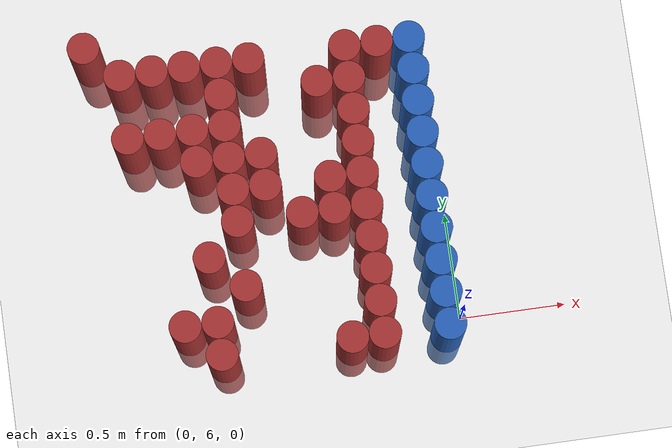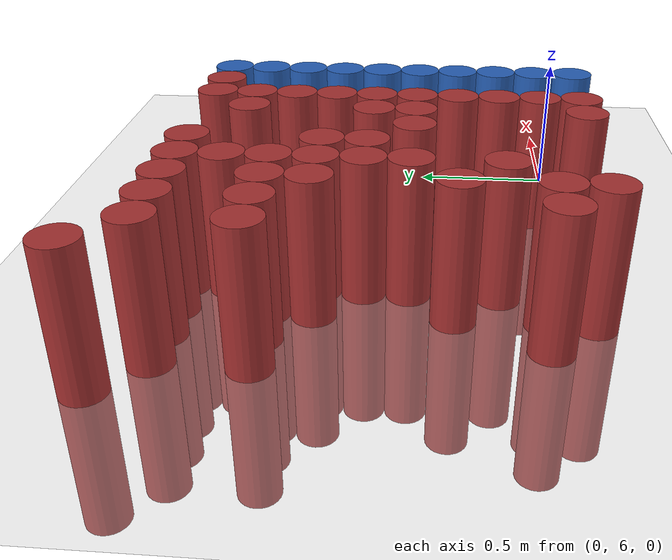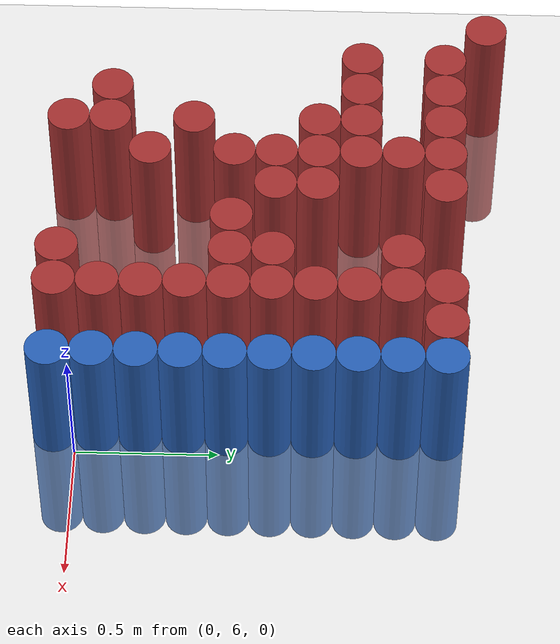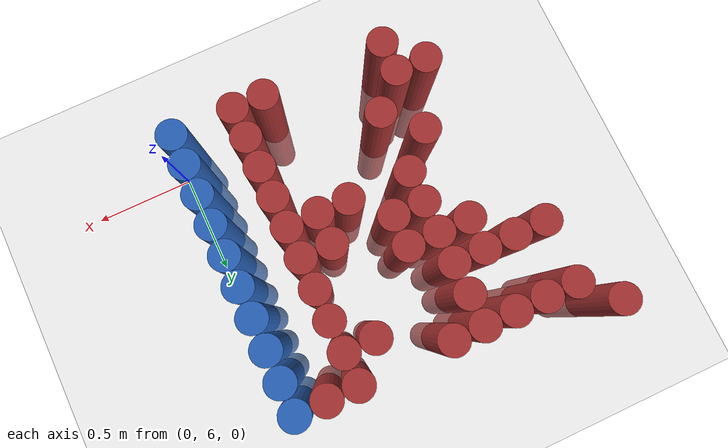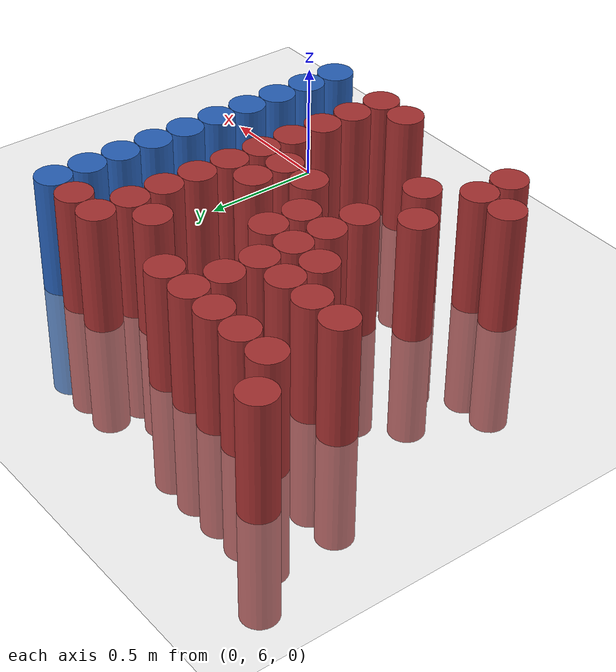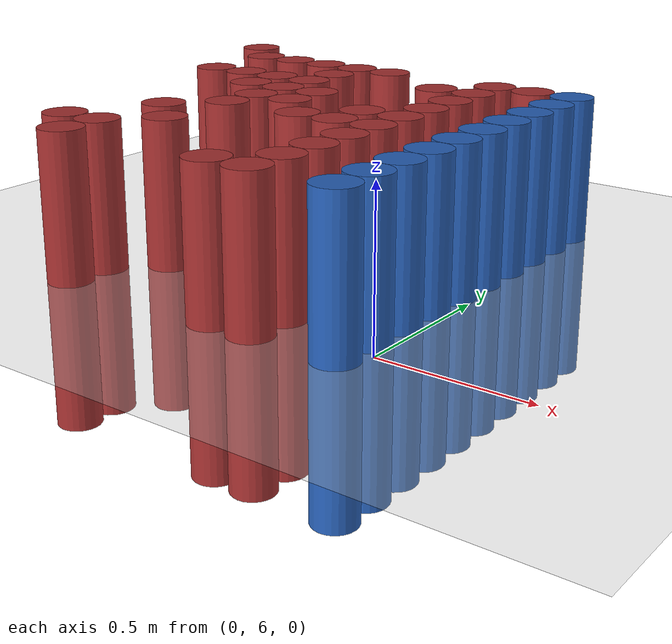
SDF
<sdf version="1.6">
 <world name="default">
  <model name="ground_plane">
   <static>1</static>
   <link name="link">
    <collision name="collision">
     <geometry><plane><normal>0 0 1</normal><size>100 100</size></plane></geometry>
     <surface><friction><ode><mu>100</mu><mu2>50</mu2></ode></friction></surface>
    </collision>
    <visual name="visual">
     <cast_shadows>0</cast_shadows>
     <geometry><plane><normal>0 0 1</normal><size>100 100</size></plane></geometry>
     <material>
      <script><uri>file://media/materials/scripts/gazebo.material</uri><name>Gazebo/Grey</name></script>
     </material>
    </visual>
   </link>
  </model>
  <model name="unit_cylinder_218">
   <static>1</static>
   <pose>-1.575000 7.425000 0.000000 0.000000 0.000000 0.000000</pose>
   <link name="link">
    <inertial>
     <mass>1</mass>
     <inertia><ixx>0.145833</ixx><ixy>0</ixy><ixz>0</ixz><iyy>0.145833</iyy><iyz>0</iyz><izz>0.125</izz></inertia>
    </inertial>
    <collision name="collision">
     <geometry><cylinder><radius>0.075000</radius><length>1</length></cylinder></geometry>
    </collision>
    <visual name="visual">
     <geometry><cylinder><radius>0.075000</radius><length>1</length></cylinder></geometry>
     <material>
      <ambient>0.648000 0.192000 0.192000 1</ambient>
      <diffuse>0.648000 0.192000 0.192000 1</diffuse>
     </material>
     <material>
      <script><name>Gazebo/Grey</name><uri>file://media/materials/scripts/gazebo.material</uri></script>
     </material>
    </visual>
   </link>
  </model>
  <model name="unit_cylinder_226">
   <static>1</static>
   <pose>-1.425000 6.975000 0.000000 0.000000 0.000000 0.000000</pose>
   <link name="link">
    <inertial>
     <mass>1</mass>
     <inertia><ixx>0.145833</ixx><ixy>0</ixy><ixz>0</ixz><iyy>0.145833</iyy><iyz>0</iyz><izz>0.125</izz></inertia>
    </inertial>
    <collision name="collision">
     <geometry><cylinder><radius>0.075000</radius><length>1</length></cylinder></geometry>
    </collision>
    <visual name="visual">
     <geometry><cylinder><radius>0.075000</radius><length>1</length></cylinder></geometry>
     <material>
      <ambient>0.648000 0.192000 0.192000 1</ambient>
      <diffuse>0.648000 0.192000 0.192000 1</diffuse>
     </material>
     <material>
      <script><name>Gazebo/Grey</name><uri>file://media/materials/scripts/gazebo.material</uri></script>
     </material>
    </visual>
   </link>
  </model>
  <model name="unit_cylinder_227">
   <static>1</static>
   <pose>-1.425000 7.275000 0.000000 0.000000 0.000000 0.000000</pose>
   <link name="link">
    <inertial>
     <mass>1</mass>
     <inertia><ixx>0.145833</ixx><ixy>0</ixy><ixz>0</ixz><iyy>0.145833</iyy><iyz>0</iyz><izz>0.125</izz></inertia>
    </inertial>
    <collision name="collision">
     <geometry><cylinder><radius>0.075000</radius><length>1</length></cylinder></geometry>
    </collision>
    <visual name="visual">
     <geometry><cylinder><radius>0.075000</radius><length>1</length></cylinder></geometry>
     <material>
      <ambient>0.648000 0.192000 0.192000 1</ambient>
      <diffuse>0.648000 0.192000 0.192000 1</diffuse>
     </material>
     <material>
      <script><name>Gazebo/Grey</name><uri>file://media/materials/scripts/gazebo.material</uri></script>
     </material>
    </visual>
   </link>
  </model>
  <model name="unit_cylinder_231">
   <static>1</static>
   <pose>-1.275000 6.075000 0.000000 0.000000 0.000000 0.000000</pose>
   <link name="link">
    <inertial>
     <mass>1</mass>
     <inertia><ixx>0.145833</ixx><ixy>0</ixy><ixz>0</ixz><iyy>0.145833</iyy><iyz>0</iyz><izz>0.125</izz></inertia>
    </inertial>
    <collision name="collision">
     <geometry><cylinder><radius>0.075000</radius><length>1</length></cylinder></geometry>
    </collision>
    <visual name="visual">
     <geometry><cylinder><radius>0.075000</radius><length>1</length></cylinder></geometry>
     <material>
      <ambient>0.648000 0.192000 0.192000 1</ambient>
      <diffuse>0.648000 0.192000 0.192000 1</diffuse>
     </material>
     <material>
      <script><name>Gazebo/Grey</name><uri>file://media/materials/scripts/gazebo.material</uri></script>
     </material>
    </visual>
   </link>
  </model>
  <model name="unit_cylinder_232">
   <static>1</static>
   <pose>-1.275000 6.975000 0.000000 0.000000 0.000000 0.000000</pose>
   <link name="link">
    <inertial>
     <mass>1</mass>
     <inertia><ixx>0.145833</ixx><ixy>0</ixy><ixz>0</ixz><iyy>0.145833</iyy><iyz>0</iyz><izz>0.125</izz></inertia>
    </inertial>
    <collision name="collision">
     <geometry><cylinder><radius>0.075000</radius><length>1</length></cylinder></geometry>
    </collision>
    <visual name="visual">
     <geometry><cylinder><radius>0.075000</radius><length>1</length></cylinder></geometry>
     <material>
      <ambient>0.648000 0.192000 0.192000 1</ambient>
      <diffuse>0.648000 0.192000 0.192000 1</diffuse>
     </material>
     <material>
      <script><name>Gazebo/Grey</name><uri>file://media/materials/scripts/gazebo.material</uri></script>
     </material>
    </visual>
   </link>
  </model>
  <model name="unit_cylinder_233">
   <static>1</static>
   <pose>-1.275000 7.275000 0.000000 0.000000 0.000000 0.000000</pose>
   <link name="link">
    <inertial>
     <mass>1</mass>
     <inertia><ixx>0.145833</ixx><ixy>0</ixy><ixz>0</ixz><iyy>0.145833</iyy><iyz>0</iyz><izz>0.125</izz></inertia>
    </inertial>
    <collision name="collision">
     <geometry><cylinder><radius>0.075000</radius><length>1</length></cylinder></geometry>
    </collision>
    <visual name="visual">
     <geometry><cylinder><radius>0.075000</radius><length>1</length></cylinder></geometry>
     <material>
      <ambient>0.648000 0.192000 0.192000 1</ambient>
      <diffuse>0.648000 0.192000 0.192000 1</diffuse>
     </material>
     <material>
      <script><name>Gazebo/Grey</name><uri>file://media/materials/scripts/gazebo.material</uri></script>
     </material>
    </visual>
   </link>
  </model>
  <model name="unit_cylinder_235">
   <static>1</static>
   <pose>-1.125000 5.925000 0.000000 0.000000 0.000000 0.000000</pose>
   <link name="link">
    <inertial>
     <mass>1</mass>
     <inertia><ixx>0.145833</ixx><ixy>0</ixy><ixz>0</ixz><iyy>0.145833</iyy><iyz>0</iyz><izz>0.125</izz></inertia>
    </inertial>
    <collision name="collision">
     <geometry><cylinder><radius>0.075000</radius><length>1</length></cylinder></geometry>
    </collision>
    <visual name="visual">
     <geometry><cylinder><radius>0.075000</radius><length>1</length></cylinder></geometry>
     <material>
      <ambient>0.648000 0.192000 0.192000 1</ambient>
      <diffuse>0.648000 0.192000 0.192000 1</diffuse>
     </material>
     <material>
      <script><name>Gazebo/Grey</name><uri>file://media/materials/scripts/gazebo.material</uri></script>
     </material>
    </visual>
   </link>
  </model>
  <model name="unit_cylinder_236">
   <static>1</static>
   <pose>-1.125000 6.075000 0.000000 0.000000 0.000000 0.000000</pose>
   <link name="link">
    <inertial>
     <mass>1</mass>
     <inertia><ixx>0.145833</ixx><ixy>0</ixy><ixz>0</ixz><iyy>0.145833</iyy><iyz>0</iyz><izz>0.125</izz></inertia>
    </inertial>
    <collision name="collision">
     <geometry><cylinder><radius>0.075000</radius><length>1</length></cylinder></geometry>
    </collision>
    <visual name="visual">
     <geometry><cylinder><radius>0.075000</radius><length>1</length></cylinder></geometry>
     <material>
      <ambient>0.648000 0.192000 0.192000 1</ambient>
      <diffuse>0.648000 0.192000 0.192000 1</diffuse>
     </material>
     <material>
      <script><name>Gazebo/Grey</name><uri>file://media/materials/scripts/gazebo.material</uri></script>
     </material>
    </visual>
   </link>
  </model>
  <model name="unit_cylinder_237">
   <static>1</static>
   <pose>-1.125000 6.375000 0.000000 0.000000 0.000000 0.000000</pose>
   <link name="link">
    <inertial>
     <mass>1</mass>
     <inertia><ixx>0.145833</ixx><ixy>0</ixy><ixz>0</ixz><iyy>0.145833</iyy><iyz>0</iyz><izz>0.125</izz></inertia>
    </inertial>
    <collision name="collision">
     <geometry><cylinder><radius>0.075000</radius><length>1</length></cylinder></geometry>
    </collision>
    <visual name="visual">
     <geometry><cylinder><radius>0.075000</radius><length>1</length></cylinder></geometry>
     <material>
      <ambient>0.648000 0.192000 0.192000 1</ambient>
      <diffuse>0.648000 0.192000 0.192000 1</diffuse>
     </material>
     <material>
      <script><name>Gazebo/Grey</name><uri>file://media/materials/scripts/gazebo.material</uri></script>
     </material>
    </visual>
   </link>
  </model>
  <model name="unit_cylinder_238">
   <static>1</static>
   <pose>-1.125000 6.825000 0.000000 0.000000 0.000000 0.000000</pose>
   <link name="link">
    <inertial>
     <mass>1</mass>
     <inertia><ixx>0.145833</ixx><ixy>0</ixy><ixz>0</ixz><iyy>0.145833</iyy><iyz>0</iyz><izz>0.125</izz></inertia>
    </inertial>
    <collision name="collision">
     <geometry><cylinder><radius>0.075000</radius><length>1</length></cylinder></geometry>
    </collision>
    <visual name="visual">
     <geometry><cylinder><radius>0.075000</radius><length>1</length></cylinder></geometry>
     <material>
      <ambient>0.648000 0.192000 0.192000 1</ambient>
      <diffuse>0.648000 0.192000 0.192000 1</diffuse>
     </material>
     <material>
      <script><name>Gazebo/Grey</name><uri>file://media/materials/scripts/gazebo.material</uri></script>
     </material>
    </visual>
   </link>
  </model>
  <model name="unit_cylinder_239">
   <static>1</static>
   <pose>-1.125000 6.975000 0.000000 0.000000 0.000000 0.000000</pose>
   <link name="link">
    <inertial>
     <mass>1</mass>
     <inertia><ixx>0.145833</ixx><ixy>0</ixy><ixz>0</ixz><iyy>0.145833</iyy><iyz>0</iyz><izz>0.125</izz></inertia>
    </inertial>
    <collision name="collision">
     <geometry><cylinder><radius>0.075000</radius><length>1</length></cylinder></geometry>
    </collision>
    <visual name="visual">
     <geometry><cylinder><radius>0.075000</radius><length>1</length></cylinder></geometry>
     <material>
      <ambient>0.648000 0.192000 0.192000 1</ambient>
      <diffuse>0.648000 0.192000 0.192000 1</diffuse>
     </material>
     <material>
      <script><name>Gazebo/Grey</name><uri>file://media/materials/scripts/gazebo.material</uri></script>
     </material>
    </visual>
   </link>
  </model>
  <model name="unit_cylinder_240">
   <static>1</static>
   <pose>-1.125000 7.275000 0.000000 0.000000 0.000000 0.000000</pose>
   <link name="link">
    <inertial>
     <mass>1</mass>
     <inertia><ixx>0.145833</ixx><ixy>0</ixy><ixz>0</ixz><iyy>0.145833</iyy><iyz>0</iyz><izz>0.125</izz></inertia>
    </inertial>
    <collision name="collision">
     <geometry><cylinder><radius>0.075000</radius><length>1</length></cylinder></geometry>
    </collision>
    <visual name="visual">
     <geometry><cylinder><radius>0.075000</radius><length>1</length></cylinder></geometry>
     <material>
      <ambient>0.648000 0.192000 0.192000 1</ambient>
      <diffuse>0.648000 0.192000 0.192000 1</diffuse>
     </material>
     <material>
      <script><name>Gazebo/Grey</name><uri>file://media/materials/scripts/gazebo.material</uri></script>
     </material>
    </visual>
   </link>
  </model>
  <model name="unit_cylinder_245">
   <static>1</static>
   <pose>-0.975000 6.225000 0.000000 0.000000 0.000000 0.000000</pose>
   <link name="link">
    <inertial>
     <mass>1</mass>
     <inertia><ixx>0.145833</ixx><ixy>0</ixy><ixz>0</ixz><iyy>0.145833</iyy><iyz>0</iyz><izz>0.125</izz></inertia>
    </inertial>
    <collision name="collision">
     <geometry><cylinder><radius>0.075000</radius><length>1</length></cylinder></geometry>
    </collision>
    <visual name="visual">
     <geometry><cylinder><radius>0.075000</radius><length>1</length></cylinder></geometry>
     <material>
      <ambient>0.648000 0.192000 0.192000 1</ambient>
      <diffuse>0.648000 0.192000 0.192000 1</diffuse>
     </material>
     <material>
      <script><name>Gazebo/Grey</name><uri>file://media/materials/scripts/gazebo.material</uri></script>
     </material>
    </visual>
   </link>
  </model>
  <model name="unit_cylinder_246">
   <static>1</static>
   <pose>-0.975000 6.525000 0.000000 0.000000 0.000000 0.000000</pose>
   <link name="link">
    <inertial>
     <mass>1</mass>
     <inertia><ixx>0.145833</ixx><ixy>0</ixy><ixz>0</ixz><iyy>0.145833</iyy><iyz>0</iyz><izz>0.125</izz></inertia>
    </inertial>
    <collision name="collision">
     <geometry><cylinder><radius>0.075000</radius><length>1</length></cylinder></geometry>
    </collision>
    <visual name="visual">
     <geometry><cylinder><radius>0.075000</radius><length>1</length></cylinder></geometry>
     <material>
      <ambient>0.648000 0.192000 0.192000 1</ambient>
      <diffuse>0.648000 0.192000 0.192000 1</diffuse>
     </material>
     <material>
      <script><name>Gazebo/Grey</name><uri>file://media/materials/scripts/gazebo.material</uri></script>
     </material>
    </visual>
   </link>
  </model>
  <model name="unit_cylinder_247">
   <static>1</static>
   <pose>-0.975000 6.675000 0.000000 0.000000 0.000000 0.000000</pose>
   <link name="link">
    <inertial>
     <mass>1</mass>
     <inertia><ixx>0.145833</ixx><ixy>0</ixy><ixz>0</ixz><iyy>0.145833</iyy><iyz>0</iyz><izz>0.125</izz></inertia>
    </inertial>
    <collision name="collision">
     <geometry><cylinder><radius>0.075000</radius><length>1</length></cylinder></geometry>
    </collision>
    <visual name="visual">
     <geometry><cylinder><radius>0.075000</radius><length>1</length></cylinder></geometry>
     <material>
      <ambient>0.648000 0.192000 0.192000 1</ambient>
      <diffuse>0.648000 0.192000 0.192000 1</diffuse>
     </material>
     <material>
      <script><name>Gazebo/Grey</name><uri>file://media/materials/scripts/gazebo.material</uri></script>
     </material>
    </visual>
   </link>
  </model>
  <model name="unit_cylinder_248">
   <static>1</static>
   <pose>-0.975000 6.825000 0.000000 0.000000 0.000000 0.000000</pose>
   <link name="link">
    <inertial>
     <mass>1</mass>
     <inertia><ixx>0.145833</ixx><ixy>0</ixy><ixz>0</ixz><iyy>0.145833</iyy><iyz>0</iyz><izz>0.125</izz></inertia>
    </inertial>
    <collision name="collision">
     <geometry><cylinder><radius>0.075000</radius><length>1</length></cylinder></geometry>
    </collision>
    <visual name="visual">
     <geometry><cylinder><radius>0.075000</radius><length>1</length></cylinder></geometry>
     <material>
      <ambient>0.648000 0.192000 0.192000 1</ambient>
      <diffuse>0.648000 0.192000 0.192000 1</diffuse>
     </material>
     <material>
      <script><name>Gazebo/Grey</name><uri>file://media/materials/scripts/gazebo.material</uri></script>
     </material>
    </visual>
   </link>
  </model>
  <model name="unit_cylinder_249">
   <static>1</static>
   <pose>-0.975000 6.975000 0.000000 0.000000 0.000000 0.000000</pose>
   <link name="link">
    <inertial>
     <mass>1</mass>
     <inertia><ixx>0.145833</ixx><ixy>0</ixy><ixz>0</ixz><iyy>0.145833</iyy><iyz>0</iyz><izz>0.125</izz></inertia>
    </inertial>
    <collision name="collision">
     <geometry><cylinder><radius>0.075000</radius><length>1</length></cylinder></geometry>
    </collision>
    <visual name="visual">
     <geometry><cylinder><radius>0.075000</radius><length>1</length></cylinder></geometry>
     <material>
      <ambient>0.648000 0.192000 0.192000 1</ambient>
      <diffuse>0.648000 0.192000 0.192000 1</diffuse>
     </material>
     <material>
      <script><name>Gazebo/Grey</name><uri>file://media/materials/scripts/gazebo.material</uri></script>
     </material>
    </visual>
   </link>
  </model>
  <model name="unit_cylinder_250">
   <static>1</static>
   <pose>-0.975000 7.125000 0.000000 0.000000 0.000000 0.000000</pose>
   <link name="link">
    <inertial>
     <mass>1</mass>
     <inertia><ixx>0.145833</ixx><ixy>0</ixy><ixz>0</ixz><iyy>0.145833</iyy><iyz>0</iyz><izz>0.125</izz></inertia>
    </inertial>
    <collision name="collision">
     <geometry><cylinder><radius>0.075000</radius><length>1</length></cylinder></geometry>
    </collision>
    <visual name="visual">
     <geometry><cylinder><radius>0.075000</radius><length>1</length></cylinder></geometry>
     <material>
      <ambient>0.648000 0.192000 0.192000 1</ambient>
      <diffuse>0.648000 0.192000 0.192000 1</diffuse>
     </material>
     <material>
      <script><name>Gazebo/Grey</name><uri>file://media/materials/scripts/gazebo.material</uri></script>
     </material>
    </visual>
   </link>
  </model>
  <model name="unit_cylinder_251">
   <static>1</static>
   <pose>-0.975000 7.275000 0.000000 0.000000 0.000000 0.000000</pose>
   <link name="link">
    <inertial>
     <mass>1</mass>
     <inertia><ixx>0.145833</ixx><ixy>0</ixy><ixz>0</ixz><iyy>0.145833</iyy><iyz>0</iyz><izz>0.125</izz></inertia>
    </inertial>
    <collision name="collision">
     <geometry><cylinder><radius>0.075000</radius><length>1</length></cylinder></geometry>
    </collision>
    <visual name="visual">
     <geometry><cylinder><radius>0.075000</radius><length>1</length></cylinder></geometry>
     <material>
      <ambient>0.648000 0.192000 0.192000 1</ambient>
      <diffuse>0.648000 0.192000 0.192000 1</diffuse>
     </material>
     <material>
      <script><name>Gazebo/Grey</name><uri>file://media/materials/scripts/gazebo.material</uri></script>
     </material>
    </visual>
   </link>
  </model>
  <model name="unit_cylinder_255">
   <static>1</static>
   <pose>-0.825000 6.675000 0.000000 0.000000 0.000000 0.000000</pose>
   <link name="link">
    <inertial>
     <mass>1</mass>
     <inertia><ixx>0.145833</ixx><ixy>0</ixy><ixz>0</ixz><iyy>0.145833</iyy><iyz>0</iyz><izz>0.125</izz></inertia>
    </inertial>
    <collision name="collision">
     <geometry><cylinder><radius>0.075000</radius><length>1</length></cylinder></geometry>
    </collision>
    <visual name="visual">
     <geometry><cylinder><radius>0.075000</radius><length>1</length></cylinder></geometry>
     <material>
      <ambient>0.648000 0.192000 0.192000 1</ambient>
      <diffuse>0.648000 0.192000 0.192000 1</diffuse>
     </material>
     <material>
      <script><name>Gazebo/Grey</name><uri>file://media/materials/scripts/gazebo.material</uri></script>
     </material>
    </visual>
   </link>
  </model>
  <model name="unit_cylinder_256">
   <static>1</static>
   <pose>-0.825000 6.825000 0.000000 0.000000 0.000000 0.000000</pose>
   <link name="link">
    <inertial>
     <mass>1</mass>
     <inertia><ixx>0.145833</ixx><ixy>0</ixy><ixz>0</ixz><iyy>0.145833</iyy><iyz>0</iyz><izz>0.125</izz></inertia>
    </inertial>
    <collision name="collision">
     <geometry><cylinder><radius>0.075000</radius><length>1</length></cylinder></geometry>
    </collision>
    <visual name="visual">
     <geometry><cylinder><radius>0.075000</radius><length>1</length></cylinder></geometry>
     <material>
      <ambient>0.648000 0.192000 0.192000 1</ambient>
      <diffuse>0.648000 0.192000 0.192000 1</diffuse>
     </material>
     <material>
      <script><name>Gazebo/Grey</name><uri>file://media/materials/scripts/gazebo.material</uri></script>
     </material>
    </visual>
   </link>
  </model>
  <model name="unit_cylinder_257">
   <static>1</static>
   <pose>-0.825000 7.275000 0.000000 0.000000 0.000000 0.000000</pose>
   <link name="link">
    <inertial>
     <mass>1</mass>
     <inertia><ixx>0.145833</ixx><ixy>0</ixy><ixz>0</ixz><iyy>0.145833</iyy><iyz>0</iyz><izz>0.125</izz></inertia>
    </inertial>
    <collision name="collision">
     <geometry><cylinder><radius>0.075000</radius><length>1</length></cylinder></geometry>
    </collision>
    <visual name="visual">
     <geometry><cylinder><radius>0.075000</radius><length>1</length></cylinder></geometry>
     <material>
      <ambient>0.648000 0.192000 0.192000 1</ambient>
      <diffuse>0.648000 0.192000 0.192000 1</diffuse>
     </material>
     <material>
      <script><name>Gazebo/Grey</name><uri>file://media/materials/scripts/gazebo.material</uri></script>
     </material>
    </visual>
   </link>
  </model>
  <model name="unit_cylinder_264">
   <static>1</static>
   <pose>-0.675000 6.525000 0.000000 0.000000 0.000000 0.000000</pose>
   <link name="link">
    <inertial>
     <mass>1</mass>
     <inertia><ixx>0.145833</ixx><ixy>0</ixy><ixz>0</ixz><iyy>0.145833</iyy><iyz>0</iyz><izz>0.125</izz></inertia>
    </inertial>
    <collision name="collision">
     <geometry><cylinder><radius>0.075000</radius><length>1</length></cylinder></geometry>
    </collision>
    <visual name="visual">
     <geometry><cylinder><radius>0.075000</radius><length>1</length></cylinder></geometry>
     <material>
      <ambient>0.648000 0.192000 0.192000 1</ambient>
      <diffuse>0.648000 0.192000 0.192000 1</diffuse>
     </material>
     <material>
      <script><name>Gazebo/Grey</name><uri>file://media/materials/scripts/gazebo.material</uri></script>
     </material>
    </visual>
   </link>
  </model>
  <model name="unit_cylinder_274">
   <static>1</static>
   <pose>-0.525000 5.925000 0.000000 0.000000 0.000000 0.000000</pose>
   <link name="link">
    <inertial>
     <mass>1</mass>
     <inertia><ixx>0.145833</ixx><ixy>0</ixy><ixz>0</ixz><iyy>0.145833</iyy><iyz>0</iyz><izz>0.125</izz></inertia>
    </inertial>
    <collision name="collision">
     <geometry><cylinder><radius>0.075000</radius><length>1</length></cylinder></geometry>
    </collision>
    <visual name="visual">
     <geometry><cylinder><radius>0.075000</radius><length>1</length></cylinder></geometry>
     <material>
      <ambient>0.648000 0.192000 0.192000 1</ambient>
      <diffuse>0.648000 0.192000 0.192000 1</diffuse>
     </material>
     <material>
      <script><name>Gazebo/Grey</name><uri>file://media/materials/scripts/gazebo.material</uri></script>
     </material>
    </visual>
   </link>
  </model>
  <model name="unit_cylinder_275">
   <static>1</static>
   <pose>-0.525000 6.525000 0.000000 0.000000 0.000000 0.000000</pose>
   <link name="link">
    <inertial>
     <mass>1</mass>
     <inertia><ixx>0.145833</ixx><ixy>0</ixy><ixz>0</ixz><iyy>0.145833</iyy><iyz>0</iyz><izz>0.125</izz></inertia>
    </inertial>
    <collision name="collision">
     <geometry><cylinder><radius>0.075000</radius><length>1</length></cylinder></geometry>
    </collision>
    <visual name="visual">
     <geometry><cylinder><radius>0.075000</radius><length>1</length></cylinder></geometry>
     <material>
      <ambient>0.648000 0.192000 0.192000 1</ambient>
      <diffuse>0.648000 0.192000 0.192000 1</diffuse>
     </material>
     <material>
      <script><name>Gazebo/Grey</name><uri>file://media/materials/scripts/gazebo.material</uri></script>
     </material>
    </visual>
   </link>
  </model>
  <model name="unit_cylinder_276">
   <static>1</static>
   <pose>-0.525000 6.675000 0.000000 0.000000 0.000000 0.000000</pose>
   <link name="link">
    <inertial>
     <mass>1</mass>
     <inertia><ixx>0.145833</ixx><ixy>0</ixy><ixz>0</ixz><iyy>0.145833</iyy><iyz>0</iyz><izz>0.125</izz></inertia>
    </inertial>
    <collision name="collision">
     <geometry><cylinder><radius>0.075000</radius><length>1</length></cylinder></geometry>
    </collision>
    <visual name="visual">
     <geometry><cylinder><radius>0.075000</radius><length>1</length></cylinder></geometry>
     <material>
      <ambient>0.648000 0.192000 0.192000 1</ambient>
      <diffuse>0.648000 0.192000 0.192000 1</diffuse>
     </material>
     <material>
      <script><name>Gazebo/Grey</name><uri>file://media/materials/scripts/gazebo.material</uri></script>
     </material>
    </visual>
   </link>
  </model>
  <model name="unit_cylinder_277">
   <static>1</static>
   <pose>-0.525000 7.125000 0.000000 0.000000 0.000000 0.000000</pose>
   <link name="link">
    <inertial>
     <mass>1</mass>
     <inertia><ixx>0.145833</ixx><ixy>0</ixy><ixz>0</ixz><iyy>0.145833</iyy><iyz>0</iyz><izz>0.125</izz></inertia>
    </inertial>
    <collision name="collision">
     <geometry><cylinder><radius>0.075000</radius><length>1</length></cylinder></geometry>
    </collision>
    <visual name="visual">
     <geometry><cylinder><radius>0.075000</radius><length>1</length></cylinder></geometry>
     <material>
      <ambient>0.648000 0.192000 0.192000 1</ambient>
      <diffuse>0.648000 0.192000 0.192000 1</diffuse>
     </material>
     <material>
      <script><name>Gazebo/Grey</name><uri>file://media/materials/scripts/gazebo.material</uri></script>
     </material>
    </visual>
   </link>
  </model>
  <model name="unit_cylinder_281">
   <static>1</static>
   <pose>-0.375000 5.925000 0.000000 0.000000 0.000000 0.000000</pose>
   <link name="link">
    <inertial>
     <mass>1</mass>
     <inertia><ixx>0.145833</ixx><ixy>0</ixy><ixz>0</ixz><iyy>0.145833</iyy><iyz>0</iyz><izz>0.125</izz></inertia>
    </inertial>
    <collision name="collision">
     <geometry><cylinder><radius>0.075000</radius><length>1</length></cylinder></geometry>
    </collision>
    <visual name="visual">
     <geometry><cylinder><radius>0.075000</radius><length>1</length></cylinder></geometry>
     <material>
      <ambient>0.648000 0.192000 0.192000 1</ambient>
      <diffuse>0.648000 0.192000 0.192000 1</diffuse>
     </material>
     <material>
      <script><name>Gazebo/Grey</name><uri>file://media/materials/scripts/gazebo.material</uri></script>
     </material>
    </visual>
   </link>
  </model>
  <model name="unit_cylinder_282">
   <static>1</static>
   <pose>-0.375000 6.075000 0.000000 0.000000 0.000000 0.000000</pose>
   <link name="link">
    <inertial>
     <mass>1</mass>
     <inertia><ixx>0.145833</ixx><ixy>0</ixy><ixz>0</ixz><iyy>0.145833</iyy><iyz>0</iyz><izz>0.125</izz></inertia>
    </inertial>
    <collision name="collision">
     <geometry><cylinder><radius>0.075000</radius><length>1</length></cylinder></geometry>
    </collision>
    <visual name="visual">
     <geometry><cylinder><radius>0.075000</radius><length>1</length></cylinder></geometry>
     <material>
      <ambient>0.648000 0.192000 0.192000 1</ambient>
      <diffuse>0.648000 0.192000 0.192000 1</diffuse>
     </material>
     <material>
      <script><name>Gazebo/Grey</name><uri>file://media/materials/scripts/gazebo.material</uri></script>
     </material>
    </visual>
   </link>
  </model>
  <model name="unit_cylinder_283">
   <static>1</static>
   <pose>-0.375000 6.225000 0.000000 0.000000 0.000000 0.000000</pose>
   <link name="link">
    <inertial>
     <mass>1</mass>
     <inertia><ixx>0.145833</ixx><ixy>0</ixy><ixz>0</ixz><iyy>0.145833</iyy><iyz>0</iyz><izz>0.125</izz></inertia>
    </inertial>
    <collision name="collision">
     <geometry><cylinder><radius>0.075000</radius><length>1</length></cylinder></geometry>
    </collision>
    <visual name="visual">
     <geometry><cylinder><radius>0.075000</radius><length>1</length></cylinder></geometry>
     <material>
      <ambient>0.648000 0.192000 0.192000 1</ambient>
      <diffuse>0.648000 0.192000 0.192000 1</diffuse>
     </material>
     <material>
      <script><name>Gazebo/Grey</name><uri>file://media/materials/scripts/gazebo.material</uri></script>
     </material>
    </visual>
   </link>
  </model>
  <model name="unit_cylinder_284">
   <static>1</static>
   <pose>-0.375000 6.375000 0.000000 0.000000 0.000000 0.000000</pose>
   <link name="link">
    <inertial>
     <mass>1</mass>
     <inertia><ixx>0.145833</ixx><ixy>0</ixy><ixz>0</ixz><iyy>0.145833</iyy><iyz>0</iyz><izz>0.125</izz></inertia>
    </inertial>
    <collision name="collision">
     <geometry><cylinder><radius>0.075000</radius><length>1</length></cylinder></geometry>
    </collision>
    <visual name="visual">
     <geometry><cylinder><radius>0.075000</radius><length>1</length></cylinder></geometry>
     <material>
      <ambient>0.648000 0.192000 0.192000 1</ambient>
      <diffuse>0.648000 0.192000 0.192000 1</diffuse>
     </material>
     <material>
      <script><name>Gazebo/Grey</name><uri>file://media/materials/scripts/gazebo.material</uri></script>
     </material>
    </visual>
   </link>
  </model>
  <model name="unit_cylinder_285">
   <static>1</static>
   <pose>-0.375000 6.525000 0.000000 0.000000 0.000000 0.000000</pose>
   <link name="link">
    <inertial>
     <mass>1</mass>
     <inertia><ixx>0.145833</ixx><ixy>0</ixy><ixz>0</ixz><iyy>0.145833</iyy><iyz>0</iyz><izz>0.125</izz></inertia>
    </inertial>
    <collision name="collision">
     <geometry><cylinder><radius>0.075000</radius><length>1</length></cylinder></geometry>
    </collision>
    <visual name="visual">
     <geometry><cylinder><radius>0.075000</radius><length>1</length></cylinder></geometry>
     <material>
      <ambient>0.648000 0.192000 0.192000 1</ambient>
      <diffuse>0.648000 0.192000 0.192000 1</diffuse>
     </material>
     <material>
      <script><name>Gazebo/Grey</name><uri>file://media/materials/scripts/gazebo.material</uri></script>
     </material>
    </visual>
   </link>
  </model>
  <model name="unit_cylinder_286">
   <static>1</static>
   <pose>-0.375000 6.675000 0.000000 0.000000 0.000000 0.000000</pose>
   <link name="link">
    <inertial>
     <mass>1</mass>
     <inertia><ixx>0.145833</ixx><ixy>0</ixy><ixz>0</ixz><iyy>0.145833</iyy><iyz>0</iyz><izz>0.125</izz></inertia>
    </inertial>
    <collision name="collision">
     <geometry><cylinder><radius>0.075000</radius><length>1</length></cylinder></geometry>
    </collision>
    <visual name="visual">
     <geometry><cylinder><radius>0.075000</radius><length>1</length></cylinder></geometry>
     <material>
      <ambient>0.648000 0.192000 0.192000 1</ambient>
      <diffuse>0.648000 0.192000 0.192000 1</diffuse>
     </material>
     <material>
      <script><name>Gazebo/Grey</name><uri>file://media/materials/scripts/gazebo.material</uri></script>
     </material>
    </visual>
   </link>
  </model>
  <model name="unit_cylinder_287">
   <static>1</static>
   <pose>-0.375000 6.825000 0.000000 0.000000 0.000000 0.000000</pose>
   <link name="link">
    <inertial>
     <mass>1</mass>
     <inertia><ixx>0.145833</ixx><ixy>0</ixy><ixz>0</ixz><iyy>0.145833</iyy><iyz>0</iyz><izz>0.125</izz></inertia>
    </inertial>
    <collision name="collision">
     <geometry><cylinder><radius>0.075000</radius><length>1</length></cylinder></geometry>
    </collision>
    <visual name="visual">
     <geometry><cylinder><radius>0.075000</radius><length>1</length></cylinder></geometry>
     <material>
      <ambient>0.648000 0.192000 0.192000 1</ambient>
      <diffuse>0.648000 0.192000 0.192000 1</diffuse>
     </material>
     <material>
      <script><name>Gazebo/Grey</name><uri>file://media/materials/scripts/gazebo.material</uri></script>
     </material>
    </visual>
   </link>
  </model>
  <model name="unit_cylinder_288">
   <static>1</static>
   <pose>-0.375000 6.975000 0.000000 0.000000 0.000000 0.000000</pose>
   <link name="link">
    <inertial>
     <mass>1</mass>
     <inertia><ixx>0.145833</ixx><ixy>0</ixy><ixz>0</ixz><iyy>0.145833</iyy><iyz>0</iyz><izz>0.125</izz></inertia>
    </inertial>
    <collision name="collision">
     <geometry><cylinder><radius>0.075000</radius><length>1</length></cylinder></geometry>
    </collision>
    <visual name="visual">
     <geometry><cylinder><radius>0.075000</radius><length>1</length></cylinder></geometry>
     <material>
      <ambient>0.648000 0.192000 0.192000 1</ambient>
      <diffuse>0.648000 0.192000 0.192000 1</diffuse>
     </material>
     <material>
      <script><name>Gazebo/Grey</name><uri>file://media/materials/scripts/gazebo.material</uri></script>
     </material>
    </visual>
   </link>
  </model>
  <model name="unit_cylinder_289">
   <static>1</static>
   <pose>-0.375000 7.125000 0.000000 0.000000 0.000000 0.000000</pose>
   <link name="link">
    <inertial>
     <mass>1</mass>
     <inertia><ixx>0.145833</ixx><ixy>0</ixy><ixz>0</ixz><iyy>0.145833</iyy><iyz>0</iyz><izz>0.125</izz></inertia>
    </inertial>
    <collision name="collision">
     <geometry><cylinder><radius>0.075000</radius><length>1</length></cylinder></geometry>
    </collision>
    <visual name="visual">
     <geometry><cylinder><radius>0.075000</radius><length>1</length></cylinder></geometry>
     <material>
      <ambient>0.648000 0.192000 0.192000 1</ambient>
      <diffuse>0.648000 0.192000 0.192000 1</diffuse>
     </material>
     <material>
      <script><name>Gazebo/Grey</name><uri>file://media/materials/scripts/gazebo.material</uri></script>
     </material>
    </visual>
   </link>
  </model>
  <model name="unit_cylinder_290">
   <static>1</static>
   <pose>-0.375000 7.275000 0.000000 0.000000 0.000000 0.000000</pose>
   <link name="link">
    <inertial>
     <mass>1</mass>
     <inertia><ixx>0.145833</ixx><ixy>0</ixy><ixz>0</ixz><iyy>0.145833</iyy><iyz>0</iyz><izz>0.125</izz></inertia>
    </inertial>
    <collision name="collision">
     <geometry><cylinder><radius>0.075000</radius><length>1</length></cylinder></geometry>
    </collision>
    <visual name="visual">
     <geometry><cylinder><radius>0.075000</radius><length>1</length></cylinder></geometry>
     <material>
      <ambient>0.648000 0.192000 0.192000 1</ambient>
      <diffuse>0.648000 0.192000 0.192000 1</diffuse>
     </material>
     <material>
      <script><name>Gazebo/Grey</name><uri>file://media/materials/scripts/gazebo.material</uri></script>
     </material>
    </visual>
   </link>
  </model>
  <model name="unit_cylinder_294">
   <static>1</static>
   <pose>-0.225000 7.275000 0.000000 0.000000 0.000000 0.000000</pose>
   <link name="link">
    <inertial>
     <mass>1</mass>
     <inertia><ixx>0.145833</ixx><ixy>0</ixy><ixz>0</ixz><iyy>0.145833</iyy><iyz>0</iyz><izz>0.125</izz></inertia>
    </inertial>
    <collision name="collision">
     <geometry><cylinder><radius>0.075000</radius><length>1</length></cylinder></geometry>
    </collision>
    <visual name="visual">
     <geometry><cylinder><radius>0.075000</radius><length>1</length></cylinder></geometry>
     <material>
      <ambient>0.648000 0.192000 0.192000 1</ambient>
      <diffuse>0.648000 0.192000 0.192000 1</diffuse>
     </material>
     <material>
      <script><name>Gazebo/Grey</name><uri>file://media/materials/scripts/gazebo.material</uri></script>
     </material>
    </visual>
   </link>
  </model>
  <model name="unit_cylinder_311">
   <static>1</static>
   <pose>-0.075000 5.925000 0.000000 0.000000 0.000000 0.000000</pose>
   <link name="link">
    <inertial>
     <mass>1</mass>
     <inertia><ixx>0.145833</ixx><ixy>0</ixy><ixz>0</ixz><iyy>0.145833</iyy><iyz>0</iyz><izz>0.125</izz></inertia>
    </inertial>
    <collision name="collision">
     <geometry><cylinder><radius>0.075000</radius><length>1</length></cylinder></geometry>
    </collision>
    <visual name="visual">
     <geometry><cylinder><radius>0.075000</radius><length>1</length></cylinder></geometry>
     <material>
      <ambient>0.152000 0.379000 0.720000 1</ambient>
      <diffuse>0.152000 0.379000 0.720000 1</diffuse>
     </material>
     <material>
      <script><name>Gazebo/Grey</name><uri>file://media/materials/scripts/gazebo.material</uri></script>
     </material>
    </visual>
   </link>
  </model>
  <model name="unit_cylinder_312">
   <static>1</static>
   <pose>-0.075000 6.075000 0.000000 0.000000 0.000000 0.000000</pose>
   <link name="link">
    <inertial>
     <mass>1</mass>
     <inertia><ixx>0.145833</ixx><ixy>0</ixy><ixz>0</ixz><iyy>0.145833</iyy><iyz>0</iyz><izz>0.125</izz></inertia>
    </inertial>
    <collision name="collision">
     <geometry><cylinder><radius>0.075000</radius><length>1</length></cylinder></geometry>
    </collision>
    <visual name="visual">
     <geometry><cylinder><radius>0.075000</radius><length>1</length></cylinder></geometry>
     <material>
      <ambient>0.152000 0.379000 0.720000 1</ambient>
      <diffuse>0.152000 0.379000 0.720000 1</diffuse>
     </material>
     <material>
      <script><name>Gazebo/Grey</name><uri>file://media/materials/scripts/gazebo.material</uri></script>
     </material>
    </visual>
   </link>
  </model>
  <model name="unit_cylinder_313">
   <static>1</static>
   <pose>-0.075000 6.225000 0.000000 0.000000 0.000000 0.000000</pose>
   <link name="link">
    <inertial>
     <mass>1</mass>
     <inertia><ixx>0.145833</ixx><ixy>0</ixy><ixz>0</ixz><iyy>0.145833</iyy><iyz>0</iyz><izz>0.125</izz></inertia>
    </inertial>
    <collision name="collision">
     <geometry><cylinder><radius>0.075000</radius><length>1</length></cylinder></geometry>
    </collision>
    <visual name="visual">
     <geometry><cylinder><radius>0.075000</radius><length>1</length></cylinder></geometry>
     <material>
      <ambient>0.152000 0.379000 0.720000 1</ambient>
      <diffuse>0.152000 0.379000 0.720000 1</diffuse>
     </material>
     <material>
      <script><name>Gazebo/Grey</name><uri>file://media/materials/scripts/gazebo.material</uri></script>
     </material>
    </visual>
   </link>
  </model>
  <model name="unit_cylinder_314">
   <static>1</static>
   <pose>-0.075000 6.375000 0.000000 0.000000 0.000000 0.000000</pose>
   <link name="link">
    <inertial>
     <mass>1</mass>
     <inertia><ixx>0.145833</ixx><ixy>0</ixy><ixz>0</ixz><iyy>0.145833</iyy><iyz>0</iyz><izz>0.125</izz></inertia>
    </inertial>
    <collision name="collision">
     <geometry><cylinder><radius>0.075000</radius><length>1</length></cylinder></geometry>
    </collision>
    <visual name="visual">
     <geometry><cylinder><radius>0.075000</radius><length>1</length></cylinder></geometry>
     <material>
      <ambient>0.152000 0.379000 0.720000 1</ambient>
      <diffuse>0.152000 0.379000 0.720000 1</diffuse>
     </material>
     <material>
      <script><name>Gazebo/Grey</name><uri>file://media/materials/scripts/gazebo.material</uri></script>
     </material>
    </visual>
   </link>
  </model>
  <model name="unit_cylinder_315">
   <static>1</static>
   <pose>-0.075000 6.525000 0.000000 0.000000 0.000000 0.000000</pose>
   <link name="link">
    <inertial>
     <mass>1</mass>
     <inertia><ixx>0.145833</ixx><ixy>0</ixy><ixz>0</ixz><iyy>0.145833</iyy><iyz>0</iyz><izz>0.125</izz></inertia>
    </inertial>
    <collision name="collision">
     <geometry><cylinder><radius>0.075000</radius><length>1</length></cylinder></geometry>
    </collision>
    <visual name="visual">
     <geometry><cylinder><radius>0.075000</radius><length>1</length></cylinder></geometry>
     <material>
      <ambient>0.152000 0.379000 0.720000 1</ambient>
      <diffuse>0.152000 0.379000 0.720000 1</diffuse>
     </material>
     <material>
      <script><name>Gazebo/Grey</name><uri>file://media/materials/scripts/gazebo.material</uri></script>
     </material>
    </visual>
   </link>
  </model>
  <model name="unit_cylinder_316">
   <static>1</static>
   <pose>-0.075000 6.675000 0.000000 0.000000 0.000000 0.000000</pose>
   <link name="link">
    <inertial>
     <mass>1</mass>
     <inertia><ixx>0.145833</ixx><ixy>0</ixy><ixz>0</ixz><iyy>0.145833</iyy><iyz>0</iyz><izz>0.125</izz></inertia>
    </inertial>
    <collision name="collision">
     <geometry><cylinder><radius>0.075000</radius><length>1</length></cylinder></geometry>
    </collision>
    <visual name="visual">
     <geometry><cylinder><radius>0.075000</radius><length>1</length></cylinder></geometry>
     <material>
      <ambient>0.152000 0.379000 0.720000 1</ambient>
      <diffuse>0.152000 0.379000 0.720000 1</diffuse>
     </material>
     <material>
      <script><name>Gazebo/Grey</name><uri>file://media/materials/scripts/gazebo.material</uri></script>
     </material>
    </visual>
   </link>
  </model>
  <model name="unit_cylinder_317">
   <static>1</static>
   <pose>-0.075000 6.825000 0.000000 0.000000 0.000000 0.000000</pose>
   <link name="link">
    <inertial>
     <mass>1</mass>
     <inertia><ixx>0.145833</ixx><ixy>0</ixy><ixz>0</ixz><iyy>0.145833</iyy><iyz>0</iyz><izz>0.125</izz></inertia>
    </inertial>
    <collision name="collision">
     <geometry><cylinder><radius>0.075000</radius><length>1</length></cylinder></geometry>
    </collision>
    <visual name="visual">
     <geometry><cylinder><radius>0.075000</radius><length>1</length></cylinder></geometry>
     <material>
      <ambient>0.152000 0.379000 0.720000 1</ambient>
      <diffuse>0.152000 0.379000 0.720000 1</diffuse>
     </material>
     <material>
      <script><name>Gazebo/Grey</name><uri>file://media/materials/scripts/gazebo.material</uri></script>
     </material>
    </visual>
   </link>
  </model>
  <model name="unit_cylinder_318">
   <static>1</static>
   <pose>-0.075000 6.975000 0.000000 0.000000 0.000000 0.000000</pose>
   <link name="link">
    <inertial>
     <mass>1</mass>
     <inertia><ixx>0.145833</ixx><ixy>0</ixy><ixz>0</ixz><iyy>0.145833</iyy><iyz>0</iyz><izz>0.125</izz></inertia>
    </inertial>
    <collision name="collision">
     <geometry><cylinder><radius>0.075000</radius><length>1</length></cylinder></geometry>
    </collision>
    <visual name="visual">
     <geometry><cylinder><radius>0.075000</radius><length>1</length></cylinder></geometry>
     <material>
      <ambient>0.152000 0.379000 0.720000 1</ambient>
      <diffuse>0.152000 0.379000 0.720000 1</diffuse>
     </material>
     <material>
      <script><name>Gazebo/Grey</name><uri>file://media/materials/scripts/gazebo.material</uri></script>
     </material>
    </visual>
   </link>
  </model>
  <model name="unit_cylinder_319">
   <static>1</static>
   <pose>-0.075000 7.125000 0.000000 0.000000 0.000000 0.000000</pose>
   <link name="link">
    <inertial>
     <mass>1</mass>
     <inertia><ixx>0.145833</ixx><ixy>0</ixy><ixz>0</ixz><iyy>0.145833</iyy><iyz>0</iyz><izz>0.125</izz></inertia>
    </inertial>
    <collision name="collision">
     <geometry><cylinder><radius>0.075000</radius><length>1</length></cylinder></geometry>
    </collision>
    <visual name="visual">
     <geometry><cylinder><radius>0.075000</radius><length>1</length></cylinder></geometry>
     <material>
      <ambient>0.152000 0.379000 0.720000 1</ambient>
      <diffuse>0.152000 0.379000 0.720000 1</diffuse>
     </material>
     <material>
      <script><name>Gazebo/Grey</name><uri>file://media/materials/scripts/gazebo.material</uri></script>
     </material>
    </visual>
   </link>
  </model>
  <model name="unit_cylinder_320">
   <static>1</static>
   <pose>-0.075000 7.275000 0.000000 0.000000 0.000000 0.000000</pose>
   <link name="link">
    <inertial>
     <mass>1</mass>
     <inertia><ixx>0.145833</ixx><ixy>0</ixy><ixz>0</ixz><iyy>0.145833</iyy><iyz>0</iyz><izz>0.125</izz></inertia>
    </inertial>
    <collision name="collision">
     <geometry><cylinder><radius>0.075000</radius><length>1</length></cylinder></geometry>
    </collision>
    <visual name="visual">
     <geometry><cylinder><radius>0.075000</radius><length>1</length></cylinder></geometry>
     <material>
      <ambient>0.152000 0.379000 0.720000 1</ambient>
      <diffuse>0.152000 0.379000 0.720000 1</diffuse>
     </material>
     <material>
      <script><name>Gazebo/Grey</name><uri>file://media/materials/scripts/gazebo.material</uri></script>
     </material>
    </visual>
   </link>
  </model>
 </world>
</sdf>
